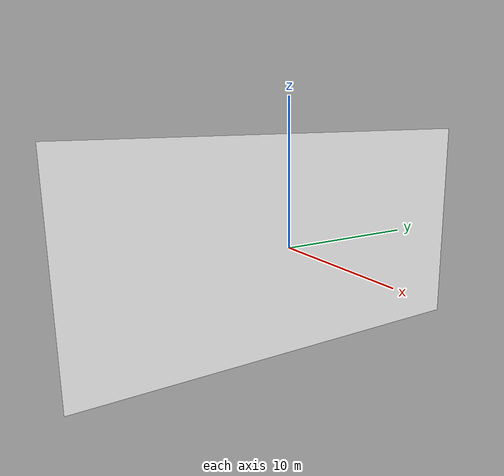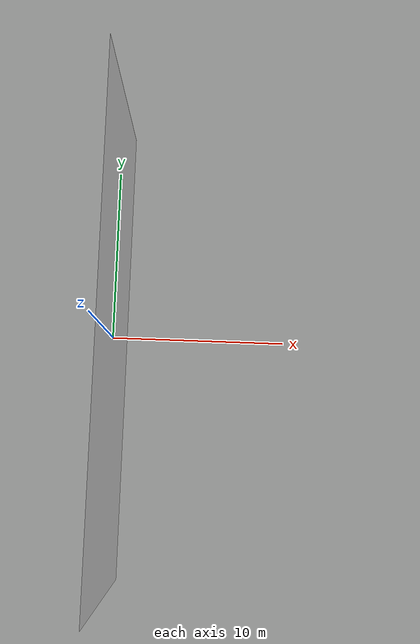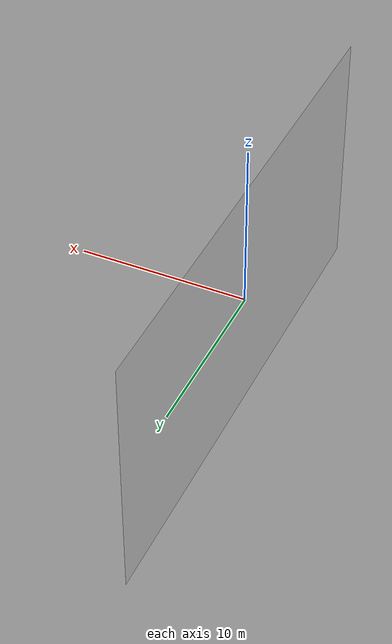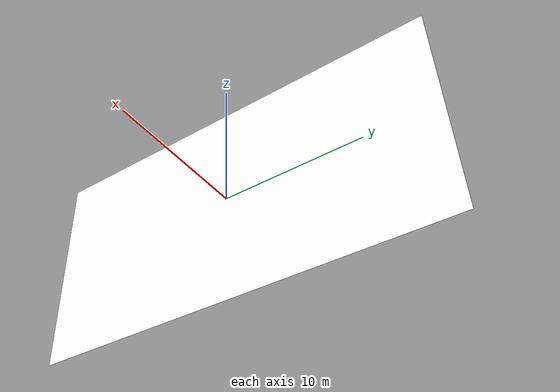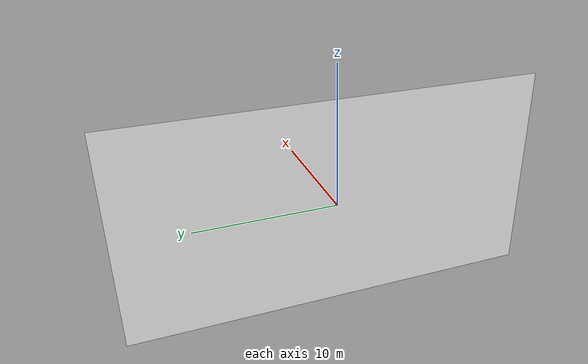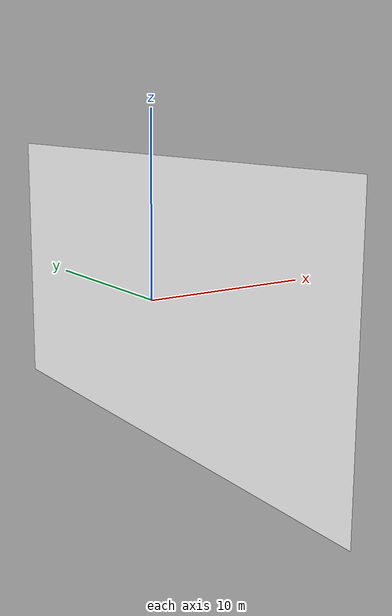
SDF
<?xml version="1.0"?>
<sdf version="1.10">
  <model name="nasa_banner">
    <static>true</static>
    <link name="link">
      <visual name="visual">
        <cast_shadows>false</cast_shadows>
        <geometry>
          <mesh>
            <uri>meshes/nasa_banner.dae</uri>
          </mesh>
        </geometry>
        <material>
          <ambient>1 1 1 1</ambient>
          <diffuse>1 1 1 1</diffuse>
          <specular>0.04 0.04 0.04 1</specular>
          <pbr>
            <metal>
              <albedo_map>materials/textures/nasa_logo_banner.png</albedo_map>
              <roughness>0.82</roughness>
              <metalness>0.0</metalness>
            </metal>
          </pbr>
        </material>
      </visual>
    </link>
  </model>
</sdf>
